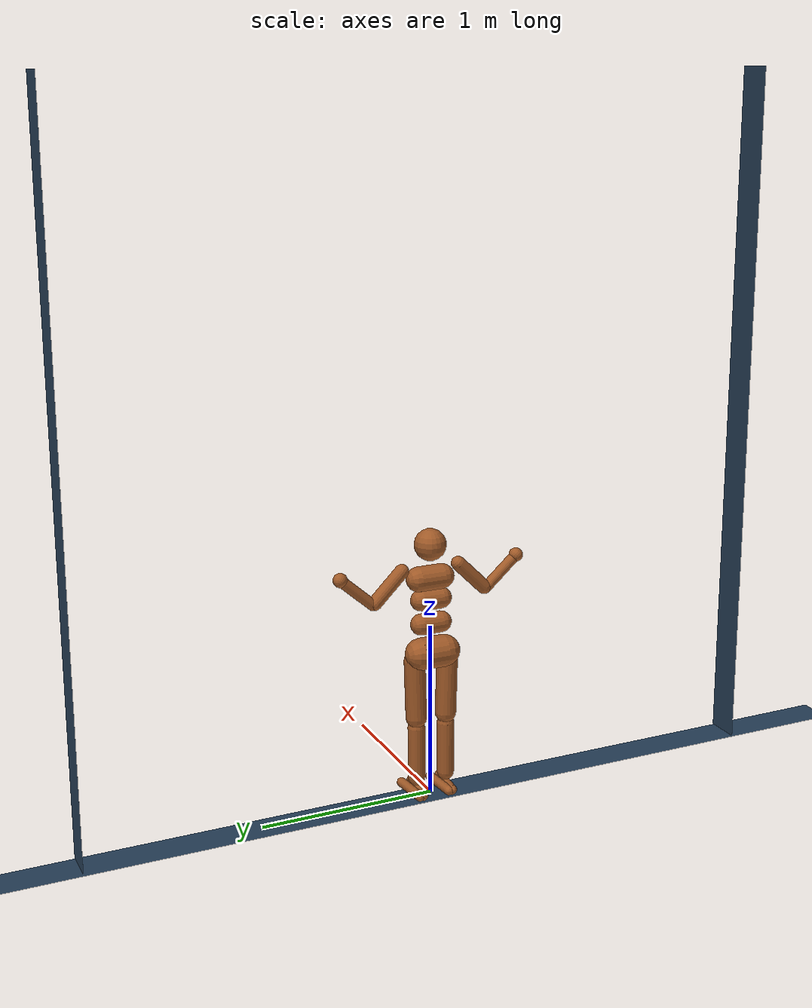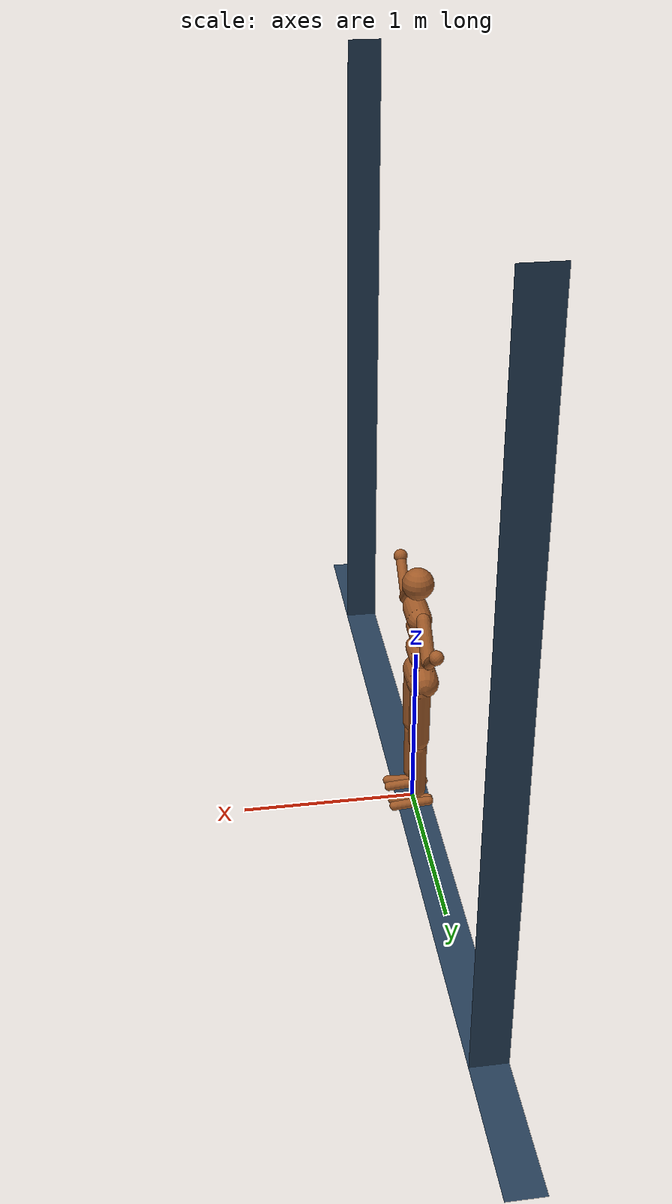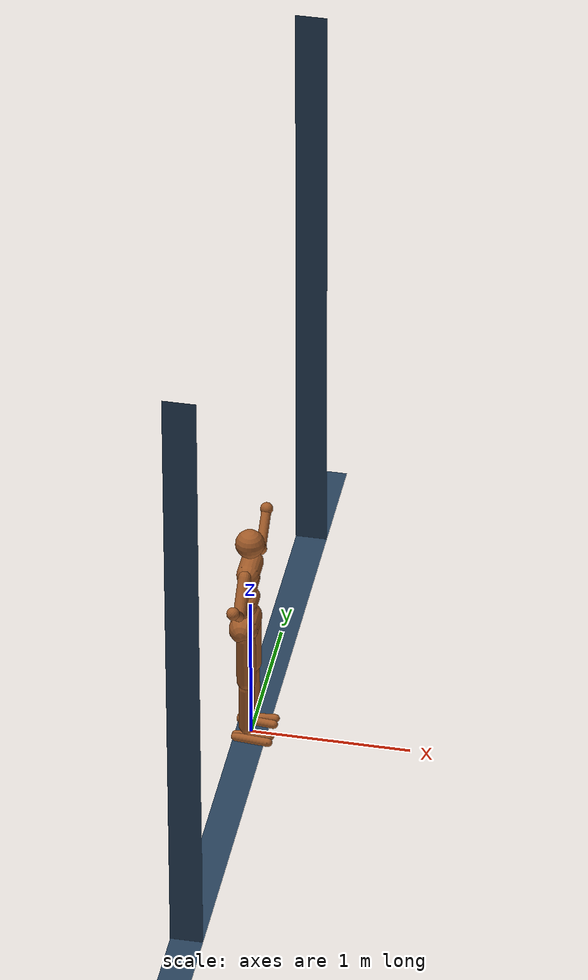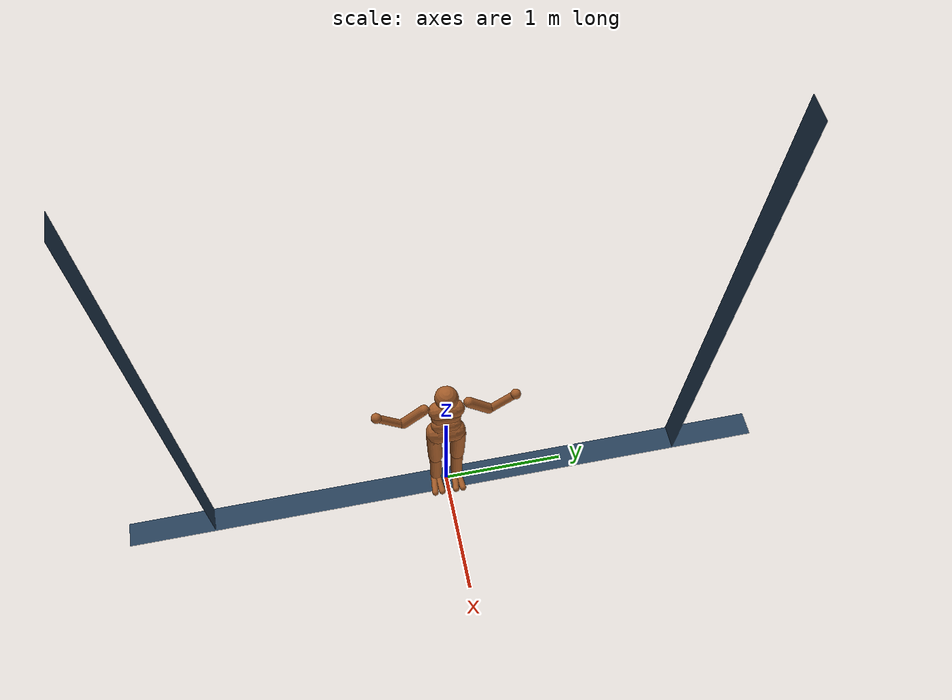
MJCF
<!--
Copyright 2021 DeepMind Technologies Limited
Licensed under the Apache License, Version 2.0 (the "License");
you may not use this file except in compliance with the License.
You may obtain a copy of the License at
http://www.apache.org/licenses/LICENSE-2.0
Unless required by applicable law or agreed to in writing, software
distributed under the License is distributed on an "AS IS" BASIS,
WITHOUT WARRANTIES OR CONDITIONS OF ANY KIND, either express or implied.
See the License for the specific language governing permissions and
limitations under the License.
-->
<mujoco model="Humanoid">
  <option timestep="0.005"/>

  <visual>
    <map force="0.1" zfar="30"/>
    <rgba haze="0.15 0.25 0.35 1"/>
    <global offwidth="2560" offheight="1440" elevation="-20" azimuth="120"/>
  </visual>

  <statistic center="0 0 0.7"/>

  <asset>
    <texture type="skybox" builtin="gradient" rgb1=".3 .5 .7" rgb2="0 0 0" width="32" height="512"/>
    <texture name="body" type="cube" builtin="flat" mark="cross" width="128" height="128" rgb1="0.8 0.6 0.4" rgb2="0.8 0.6 0.4" markrgb="1 1 1" random="0.01"/>
    <material name="body" texture="body" texuniform="true" rgba="0.8 0.6 .4 1"/>
    <texture name="grid" type="2d" builtin="checker" width="512" height="512" rgb1=".1 .2 .3" rgb2=".2 .3 .4"/>
    <material name="grid" texture="grid" texrepeat="1 1" texuniform="true" reflectance=".2"/>
  </asset>

  <default>
    <motor ctrlrange="-1 1" ctrllimited="true"/>
    <default class="body">

      <!-- geoms -->
      <geom type="capsule" condim="1" friction=".7" solimp=".9 .99 .003" solref=".015 1" material="body" group="1"/>
      <default class="thigh">
        <geom size=".06"/>
      </default>
      <default class="shin">
        <geom fromto="0 0 0 0 0 -.3"  size=".049"/>
      </default>
      <default class="foot">
        <geom size=".027"/>
        <default class="foot1">
          <geom fromto="-.07 -.01 0 .14 -.03 0"/>
        </default>
        <default class="foot2">
          <geom fromto="-.07 .01 0 .14  .03 0"/>
        </default>
      </default>
      <default class="arm_upper">
        <geom size=".04"/>
      </default>
      <default class="arm_lower">
        <geom size=".031"/>
      </default>
      <default class="hand">
        <geom type="sphere" size=".04"/>
      </default>

      <!-- joints -->
      <joint type="hinge" damping=".2" stiffness="1" armature=".01" limited="true" solimplimit="0 .99 .01"/>
      <default class="joint_big">
        <joint damping="5" stiffness="10"/>
        <default class="hip_x">
          <joint range="-40 30"/>
        </default>
        <default class="hip_z">
          <joint range="-60 35"/>
        </default>
        <default class="joint_big_stiff">
          <joint stiffness="20"/>
        </default>
      </default>
      <default class="knee">
        <joint pos="0 0 .02" axis="-1 0 0" range="-160 2"/>
      </default>
      <default class="shoulder">
        <joint range="-85 60"/>
      </default>
      <default class="elbow">
        <joint range="-100 85" stiffness="0"/>
      </default>
    </default>
  </default>

  <worldbody>
    <geom name="floor" size=".1 3 .05" type="plane" material="grid" condim="3"/>
    <body name="wall" pos="0 0 0" xyaxes="1 0 0 0 0 1">
      <geom name="rwall2" pos = "0 2 -2" size=".1 2 .05" type="plane" material="grid" condim="3"/>
    </body>
    <body name="lwall" pos="0 0 0" xyaxes="-1 0 0 0 0 1">
      <geom name="lwall2" pos = "0 2 -2" size=".1 2 .05" type="plane" material="grid" condim="3"/>
    </body>
    <body name="ceil" pos="0 0 0" xyaxes="-1 0 0 0 1 0">
      <geom name="ceil2" pos = "0 0 -3" size=".1 2 .05" type="plane" material="grid" condim="3"/>
    </body>
    <light name="spotlight" mode="targetbodycom" target="torso" diffuse=".8 .8 .8" specular="0.3 0.3 0.3" pos="0 -6 4" cutoff="30"/>
    <camera name="forward" pos="9 0 0" xyaxes="0 1 0 0 0 1"/>
    <body name="torso" pos="0 0 1.282" childclass="body">
      <light name="top" pos="0 0 2" mode="trackcom"/>
      <camera name="back" pos="-5 0 0" xyaxes="0 -1 0 0 0 1" mode="trackcom"/>
      <camera name="side" pos="0 -3 1" xyaxes="1 0 0 0 1 2" mode="trackcom"/>
      <joint type="slide" axis="0 0 1" range="-100 100"/>
      <joint type="slide" axis="1 0 0" range="-100 100"/>
      <joint type="hinge" axis="1 0 0" range="-1000 1000"/>
      <geom name="torso" fromto="0 -.07 0 0 .07 0" size=".07"/>
      <geom name="waist_upper" fromto="-.01 -.06 -.12 -.01 .06 -.12" size=".06"/>
      <body name="head" pos="0 0 .19">
        <geom name="head" type="sphere" size=".09"/>
        <camera name="egocentric" pos=".09 0 0" xyaxes="0 -1 0 .1 0 1" fovy="80"/>
      </body>
      <body name="waist_lower" pos="-.01 0 -.26">
        <geom name="waist_lower" fromto="0 -.06 0 0 .06 0" size=".06"/>
        <body name="pelvis" pos="0 0 -.165">
          <joint name="abdomen_x" pos="0 0 .1" axis="1 0 0" range="-35 35" class="joint_big"/>
          <geom name="butt" fromto="-.02 -.07 0 -.02 .07 0" size=".09"/>
          <body name="thigh_right" pos="0 -.1 -.04">
            <joint name="hip_x_right" axis="1 0 0" class="hip_x"/>
            <geom name="thigh_right" fromto="0 0 0 0 .01 -.34" class="thigh"/>
            <body name="shin_right" pos="0 .01 -.4">
              <joint name="knee_right" class="knee"/>
              <geom name="shin_right" class="shin"/>
              <body name="foot_right" pos="0 0 -.39">
                <geom name="foot1_right" class="foot1"/>
                <geom name="foot2_right" class="foot2"/>
              </body>
            </body>
          </body>
          <body name="thigh_left" pos="0 .1 -.04">
            <joint name="hip_x_left" axis="-1 0 0" class="hip_x"/>
            <geom name="thigh_left" fromto="0 0 0 0 -.01 -.34" class="thigh"/>
            <body name="shin_left" pos="0 -.01 -.4">
              <joint name="knee_left" class="knee"/>
              <geom name="shin_left" fromto="0 0 0 0 0 -.3" class="shin"/>
              <body name="foot_left" pos="0 0 -.39">
                <geom name="foot1_left" class="foot1"/>
                <geom name="foot2_left" class="foot2"/>
              </body>
            </body>
          </body>
        </body>
      </body>
      <!--Modified for 2d-->
      <body name="upper_arm_right" pos="0 -.17 .06">
        <joint name="shoulder1_right" axis="1 0 0"  class="shoulder"/>
        <geom name="upper_arm_right" fromto="0 0 0 0 -.16 -.16" class="arm_upper"/>
        <body name="lower_arm_right" pos="0 -.18 -.18">
          <joint name="elbow_right" axis="1 0 0" class="elbow"/>
          <geom name="lower_arm_right" fromto="0 .01 .01 0 -.17 .17" class="arm_lower"/>
          <body name="hand_right" pos="0 -.18 .18">
            <geom name="hand_right" zaxis="1 1 1" class="hand"/>
          </body>
        </body>
      </body>
      <!--Modified for 2d-->
      <body name="upper_arm_left" pos="0 .17 .06">
        <joint name="shoulder1_left" axis="-1 0 0" class="shoulder"/>
        <geom name="upper_arm_left" fromto="0 0 0 0 .16 -.16" class="arm_upper"/>
        <body name="lower_arm_left" pos="0 .18 -.18">
          <joint name="elbow_left" axis="-1 0 0" class="elbow"/>
          <geom name="lower_arm_left" fromto="0 -.01 .01 0 .17 .17" class="arm_lower"/>
          <body name="hand_left" pos="0 .18 .18">
            <geom name="hand_left" zaxis="1 -1 1" class="hand"/>
          </body>
        </body>
      </body>
    </body>
  </worldbody>

  <contact>
    <exclude body1="waist_lower" body2="thigh_right"/>
    <exclude body1="waist_lower" body2="thigh_left"/>
  </contact>

  <actuator>
    <motor name="abdomen_x"       gear="40"  joint="abdomen_x"/>
    <motor name="hip_x_right"     gear="40"  joint="hip_x_right"/>
    <motor name="hip_x_left"      gear="40"  joint="hip_x_left"/>
    <motor name="shoulder1_right" gear="20"  joint="shoulder1_right"/>
    <motor name="elbow_right"     gear="40"  joint="elbow_right"/>
    <motor name="shoulder1_left"  gear="20"  joint="shoulder1_left"/>
    <motor name="elbow_left"      gear="40"  joint="elbow_left"/>
  </actuator>

    <!--The values below are split into rows for readibility:-->
      <!--torso position-->
      <!--torso orientation-->
      <!--spinal-->
      <!--right leg-->
      <!--left leg-->
      <!--arms-->
    -->
         <!--qpos="0 0 0.596-->
         <!--qpos="0 0 1.21948-->
         <!--qpos="0.4 0 0.0757706-->
         <!--qpos="-0.4 0 0.08122-->
</mujoco>
